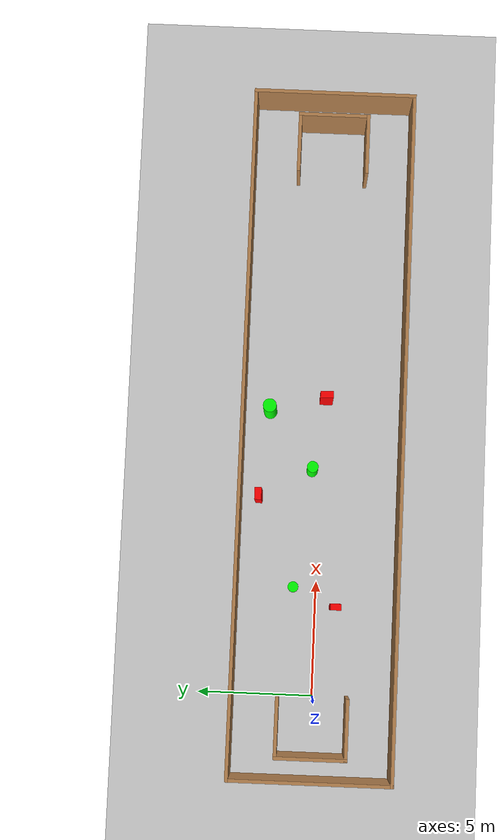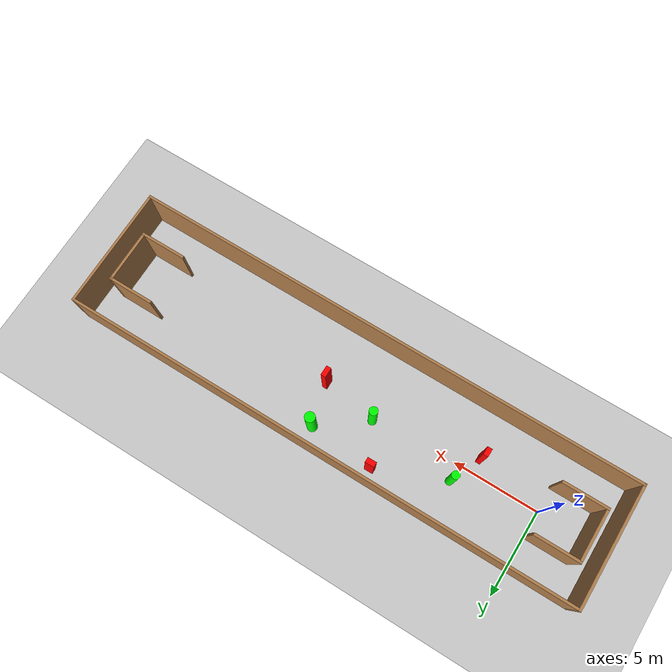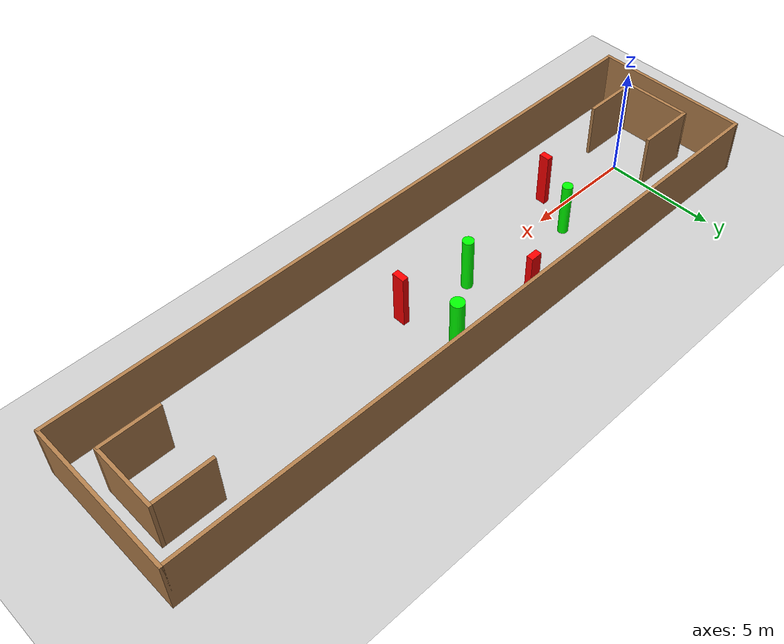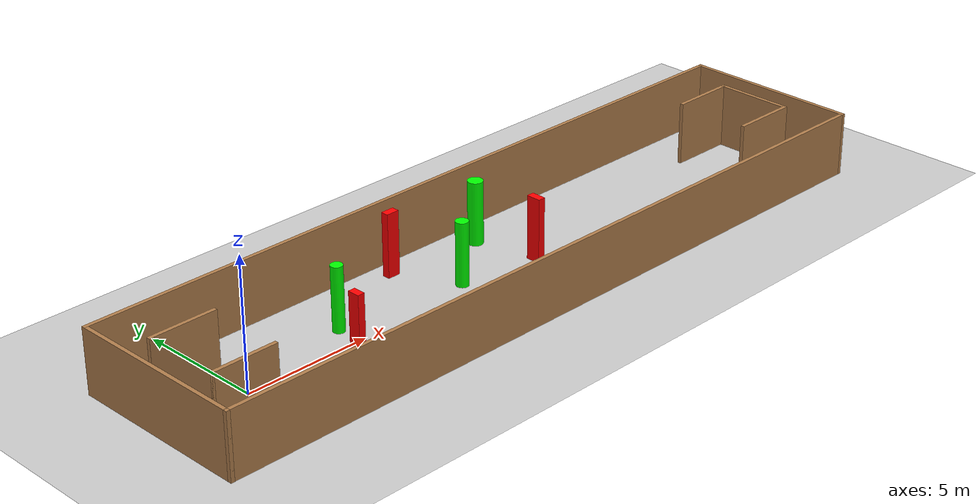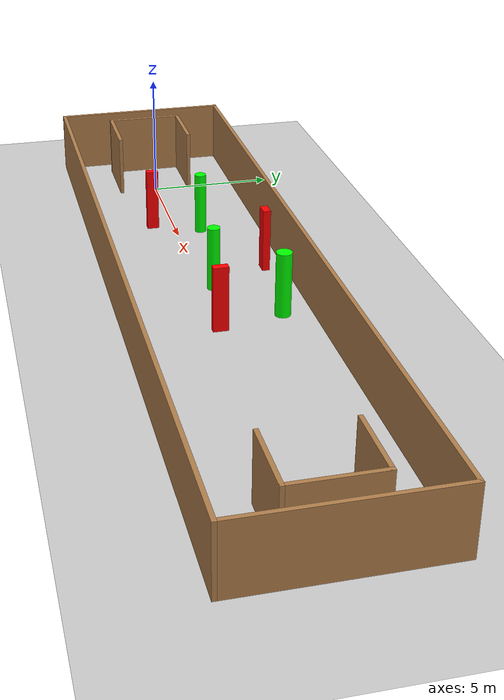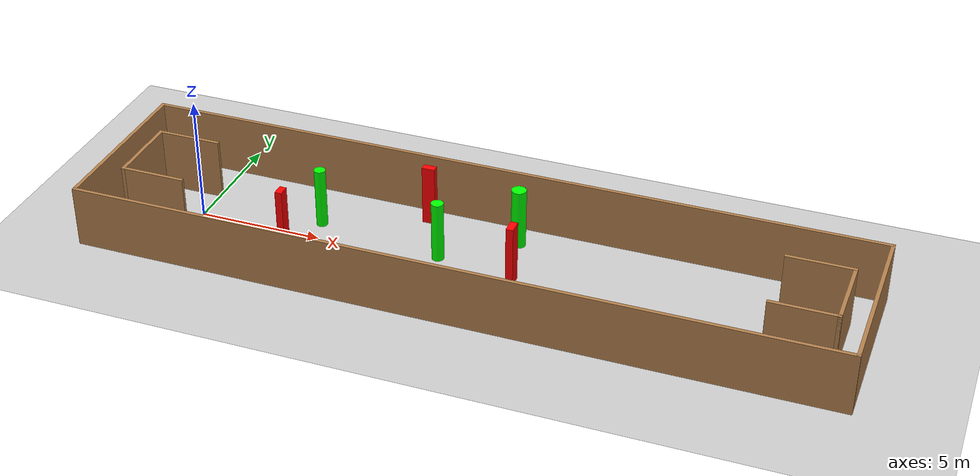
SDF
<sdf version="1.7">
 <world name="default">
  <light name="sun" type="directional">
   <pose>0 0 10 0 -0 0</pose>
   <diffuse>0.8 0.8 0.8 1</diffuse>
   <specular>0.2 0.2 0.2 1</specular>
   <attenuation>
    <range>1000</range>
    <constant>0.9</constant>
    <linear>0.01</linear>
    <quadratic>0.001</quadratic>
   </attenuation>
   <direction>-0.5 0.1 -0.9</direction>
   <spot><inner_angle>0</inner_angle><outer_angle>0</outer_angle><falloff>0</falloff></spot>
  </light>
  <model name="ground_plane">
   <static>1</static>
   <link name="link">
    <collision name="collision">
     <geometry><plane><normal>0 0 1</normal><size>100 100</size></plane></geometry>
     <surface>
      <contact><collide_bitmask>65535</collide_bitmask></contact>
      <friction><ode><mu>100</mu><mu2>50</mu2></ode></friction>
     </surface>
    </collision>
    <visual name="visual">
     <cast_shadows>0</cast_shadows>
     <geometry><plane><normal>0 0 1</normal><size>100 100</size></plane></geometry>
     <material>
      <script><uri>file://media/materials/scripts/gazebo.material</uri><name>Gazebo/Grey</name></script>
     </material>
    </visual>
   </link>
  </model>
  <gravity>0 0 -9.8</gravity>
  <magnetic_field>6e-06 2.3e-05 -4.2e-05</magnetic_field>
  <atmosphere type="adiabatic"/>
  <physics type="ode">
   <max_step_size>0.001</max_step_size>
   <real_time_factor>1</real_time_factor>
   <real_time_update_rate>1000</real_time_update_rate>
  </physics>
  <scene><ambient>0.4 0.4 0.4 1</ambient><background>0.7 0.7 0.7 1</background><shadows>1</shadows></scene>
  <spherical_coordinates>
   <surface_model>EARTH_WGS84</surface_model>
   <latitude_deg>0</latitude_deg>
   <longitude_deg>0</longitude_deg>
   <elevation>0</elevation>
   <heading_deg>0</heading_deg>
  </spherical_coordinates>
  <model name="my_base_walls">
   <link name="Wall_0">
    <collision name="Wall_0_Collision">
     <geometry><box><size>7.15 0.15 2.5</size></box></geometry>
     <pose>0 0 1.25 0 -0 0</pose>
    </collision>
    <visual name="Wall_0_Visual">
     <pose>0 0 1.25 0 -0 0</pose>
     <geometry><box><size>7.15 0.15 2.5</size></box></geometry>
     <material>
      <script><uri>file://media/materials/scripts/gazebo.material</uri><name>Gazebo/Wood</name></script>
      <ambient>1 1 1 1</ambient>
     </material>
     <meta><layer>0</layer></meta>
    </visual>
    <pose>-15 0 0 0 -0 1.5708</pose>
   </link>
   <link name="Wall_10">
    <collision name="Wall_10_Collision">
     <geometry><box><size>2.65 0.15 2.5</size></box></geometry>
     <pose>0 0 1.25 0 -0 0</pose>
    </collision>
    <visual name="Wall_10_Visual">
     <pose>0 0 1.25 0 -0 0</pose>
     <geometry><box><size>2.65 0.15 2.5</size></box></geometry>
     <material>
      <script><uri>file://media/materials/scripts/gazebo.material</uri><name>Gazebo/Wood</name></script>
      <ambient>1 1 1 1</ambient>
     </material>
     <meta><layer>0</layer></meta>
    </visual>
    <pose>-12.75 -1.5 0 0 -0 0</pose>
   </link>
   <link name="Wall_12">
    <collision name="Wall_12_Collision">
     <geometry><box><size>2.65 0.15 2.5</size></box></geometry>
     <pose>0 0 1.25 0 -0 0</pose>
    </collision>
    <visual name="Wall_12_Visual">
     <pose>0 0 1.25 0 -0 0</pose>
     <geometry><box><size>2.65 0.15 2.5</size></box></geometry>
     <material>
      <script><uri>file://media/materials/scripts/gazebo.material</uri><name>Gazebo/Wood</name></script>
      <ambient>1 1 1 1</ambient>
     </material>
     <meta><layer>0</layer></meta>
    </visual>
    <pose>-12.75 1.5 0 0 -0 0</pose>
   </link>
   <link name="Wall_14">
    <collision name="Wall_14_Collision">
     <geometry><box><size>3.15 0.15 2.5</size></box></geometry>
     <pose>0 0 1.25 0 -0 0</pose>
    </collision>
    <visual name="Wall_14_Visual">
     <pose>0 0 1.25 0 -0 0</pose>
     <geometry><box><size>3.15 0.15 2.5</size></box></geometry>
     <material>
      <script><uri>file://media/materials/scripts/gazebo.material</uri><name>Gazebo/Wood</name></script>
      <ambient>1 1 1 1</ambient>
     </material>
     <meta><layer>0</layer></meta>
    </visual>
    <pose>14 0 0 0 -0 -1.5708</pose>
   </link>
   <link name="Wall_15">
    <collision name="Wall_15_Collision">
     <geometry><box><size>2.65 0.15 2.5</size></box></geometry>
     <pose>0 0 1.25 0 -0 0</pose>
    </collision>
    <visual name="Wall_15_Visual">
     <pose>0 0 1.25 0 -0 0</pose>
     <geometry><box><size>2.65 0.15 2.5</size></box></geometry>
     <material>
      <script><uri>file://media/materials/scripts/gazebo.material</uri><name>Gazebo/Wood</name></script>
      <ambient>1 1 1 1</ambient>
     </material>
     <meta><layer>0</layer></meta>
    </visual>
    <pose>12.75 -1.5 0 0 -0 3.14159</pose>
   </link>
   <link name="Wall_17">
    <collision name="Wall_17_Collision">
     <geometry><box><size>2.65 0.15 2.5</size></box></geometry>
     <pose>0 0 1.25 0 -0 0</pose>
    </collision>
    <visual name="Wall_17_Visual">
     <pose>0 0 1.25 0 -0 0</pose>
     <geometry><box><size>2.65 0.15 2.5</size></box></geometry>
     <material>
      <script><uri>file://media/materials/scripts/gazebo.material</uri><name>Gazebo/Wood</name></script>
      <ambient>1 1 1 1</ambient>
     </material>
     <meta><layer>0</layer></meta>
    </visual>
    <pose>12.75 1.5 0 0 -0 3.14159</pose>
   </link>
   <link name="Wall_2">
    <collision name="Wall_2_Collision">
     <geometry><box><size>30.15 0.15 2.5</size></box></geometry>
     <pose>0 0 1.25 0 -0 0</pose>
    </collision>
    <visual name="Wall_2_Visual">
     <pose>0 0 1.25 0 -0 0</pose>
     <geometry><box><size>30.15 0.15 2.5</size></box></geometry>
     <material>
      <script><uri>file://media/materials/scripts/gazebo.material</uri><name>Gazebo/Wood</name></script>
      <ambient>1 1 1 1</ambient>
     </material>
     <meta><layer>0</layer></meta>
    </visual>
    <pose>-0 -3.5 0 0 -0 0</pose>
   </link>
   <link name="Wall_4">
    <collision name="Wall_4_Collision">
     <geometry><box><size>30.15 0.15 2.5</size></box></geometry>
     <pose>0 0 1.25 0 -0 0</pose>
    </collision>
    <visual name="Wall_4_Visual">
     <pose>0 0 1.25 0 -0 0</pose>
     <geometry><box><size>30.15 0.15 2.5</size></box></geometry>
     <material>
      <script><uri>file://media/materials/scripts/gazebo.material</uri><name>Gazebo/Wood</name></script>
      <ambient>1 1 1 1</ambient>
     </material>
     <meta><layer>0</layer></meta>
    </visual>
    <pose>-0 3.5 0 0 -0 0</pose>
   </link>
   <link name="Wall_6">
    <collision name="Wall_6_Collision">
     <geometry><box><size>7.15 0.15 2.5</size></box></geometry>
     <pose>0 0 1.25 0 -0 0</pose>
    </collision>
    <visual name="Wall_6_Visual">
     <pose>0 0 1.25 0 -0 0</pose>
     <geometry><box><size>7.15 0.15 2.5</size></box></geometry>
     <material>
      <script><uri>file://media/materials/scripts/gazebo.material</uri><name>Gazebo/Wood</name></script>
      <ambient>1 1 1 1</ambient>
     </material>
     <meta><layer>0</layer></meta>
    </visual>
    <pose>15 0 0 0 -0 -1.5708</pose>
   </link>
   <link name="Wall_9">
    <collision name="Wall_9_Collision">
     <geometry><box><size>3.15 0.15 2.5</size></box></geometry>
     <pose>0 0 1.25 0 -0 0</pose>
    </collision>
    <visual name="Wall_9_Visual">
     <pose>0 0 1.25 0 -0 0</pose>
     <geometry><box><size>3.15 0.15 2.5</size></box></geometry>
     <material>
      <script><uri>file://media/materials/scripts/gazebo.material</uri><name>Gazebo/Wood</name></script>
      <ambient>1 1 1 1</ambient>
     </material>
     <meta><layer>0</layer></meta>
    </visual>
    <pose>-14 0 0 0 -0 -1.5708</pose>
   </link>
   <static>1</static>
   <pose>11.5 0 0 0 -0 0</pose>
  </model>
  <model name="cylinder1">
   <static>1</static>
   <link name="link">
    <inertial>
     <mass>1</mass>
     <inertia><ixx>0.5</ixx><ixy>0</ixy><ixz>0</ixz><iyy>0.5</iyy><iyz>0</iyz><izz>1</izz></inertia>
    </inertial>
    <collision name="collision">
     <geometry><cylinder><radius>0.22706079759037257</radius><length>2.5</length></cylinder></geometry>
    </collision>
    <visual name="visual">
     <geometry><cylinder><radius>0.22706079759037257</radius><length>2.5</length></cylinder></geometry>
     <material>
      <ambient>0 1 0 1</ambient>
      <diffuse>0 1 0 1</diffuse>
      <specular>0.1 0.1 0.1 1</specular>
      <emissive>0 0 0 0</emissive>
     </material>
    </visual>
   </link>
   <pose>4.721931616092345 1.0052135557783632 1.25 0 0 0</pose>
  </model>
  <model name="cylinder2">
   <static>1</static>
   <link name="link">
    <inertial>
     <mass>1</mass>
     <inertia><ixx>0.5</ixx><ixy>0</ixy><ixz>0</ixz><iyy>0.5</iyy><iyz>0</iyz><izz>1</izz></inertia>
    </inertial>
    <collision name="collision">
     <geometry><cylinder><radius>0.2450213171099288</radius><length>2.5</length></cylinder></geometry>
    </collision>
    <visual name="visual">
     <geometry><cylinder><radius>0.2450213171099288</radius><length>2.5</length></cylinder></geometry>
     <material>
      <ambient>0 1 0 1</ambient>
      <diffuse>0 1 0 1</diffuse>
      <specular>0.1 0.1 0.1 1</specular>
      <emissive>0 0 0 0</emissive>
     </material>
    </visual>
   </link>
   <pose>9.888475305352982 0.3627832993716953 1.25 0 0 0</pose>
  </model>
  <model name="cylinder3">
   <static>1</static>
   <link name="link">
    <inertial>
     <mass>1</mass>
     <inertia><ixx>0.5</ixx><ixy>0</ixy><ixz>0</ixz><iyy>0.5</iyy><iyz>0</iyz><izz>1</izz></inertia>
    </inertial>
    <collision name="collision">
     <geometry><cylinder><radius>0.29454448938237754</radius><length>2.5</length></cylinder></geometry>
    </collision>
    <visual name="visual">
     <geometry><cylinder><radius>0.29454448938237754</radius><length>2.5</length></cylinder></geometry>
     <material>
      <ambient>0 1 0 1</ambient>
      <diffuse>0 1 0 1</diffuse>
      <specular>0.1 0.1 0.1 1</specular>
      <emissive>0 0 0 0</emissive>
     </material>
    </visual>
   </link>
   <pose>12.481193759276985 2.3226380592938307 1.25 0 0 0</pose>
  </model>
  <model name="box1">
   <static>1</static>
   <link name="link">
    <inertial>
     <mass>1</mass>
     <inertia><ixx>0.083</ixx><ixy>0</ixy><ixz>0</ixz><iyy>0.083</iyy><iyz>0</iyz><izz>0.083</izz></inertia>
    </inertial>
    <collision name="collision">
     <geometry><box><size>0.2799197281601124 0.46680549041385627 2.5</size></box></geometry>
    </collision>
    <visual name="visual">
     <geometry><box><size>0.2799197281601124 0.46680549041385627 2.5</size></box></geometry>
     <material>
      <ambient>1 0 0 1</ambient>
      <diffuse>1 0 0 1</diffuse>
      <specular>0.1 0.1 0.1 1</specular>
      <emissive>0 0 0 0</emissive>
     </material>
    </visual>
    <sensor name="my_contact" type="contact">
     <contact><collision>box_collision</collision><topic>__default_topic__</topic></contact>
    </sensor>
   </link>
   <pose>3.9324614084504628 -0.8534203916100287 1.25 0 0 0</pose>
  </model>
  <model name="box2">
   <static>1</static>
   <link name="link">
    <inertial>
     <mass>1</mass>
     <inertia><ixx>0.083</ixx><ixy>0</ixy><ixz>0</ixz><iyy>0.083</iyy><iyz>0</iyz><izz>0.083</izz></inertia>
    </inertial>
    <collision name="collision">
     <geometry><box><size>0.28718738853235737 0.5694795130314043 2.5</size></box></geometry>
    </collision>
    <visual name="visual">
     <geometry><box><size>0.28718738853235737 0.5694795130314043 2.5</size></box></geometry>
     <material>
      <ambient>1 0 0 1</ambient>
      <diffuse>1 0 0 1</diffuse>
      <specular>0.1 0.1 0.1 1</specular>
      <emissive>0 0 0 0</emissive>
     </material>
    </visual>
    <sensor name="my_contact" type="contact">
     <contact><collision>box_collision</collision><topic>__default_topic__</topic></contact>
    </sensor>
   </link>
   <pose>13.052958269461882 -0.13604376822728836 1.25 0 0 0</pose>
  </model>
  <model name="box3">
   <static>1</static>
   <link name="link">
    <inertial>
     <mass>1</mass>
     <inertia><ixx>0.083</ixx><ixy>0</ixy><ixz>0</ixz><iyy>0.083</iyy><iyz>0</iyz><izz>0.083</izz></inertia>
    </inertial>
    <collision name="collision">
     <geometry><box><size>0.5220531876613645 0.2931822613765886 2.5</size></box></geometry>
    </collision>
    <visual name="visual">
     <geometry><box><size>0.5220531876613645 0.2931822613765886 2.5</size></box></geometry>
     <material>
      <ambient>1 0 0 1</ambient>
      <diffuse>1 0 0 1</diffuse>
      <specular>0.1 0.1 0.1 1</specular>
      <emissive>0 0 0 0</emissive>
     </material>
    </visual>
    <sensor name="my_contact" type="contact">
     <contact><collision>box_collision</collision><topic>__default_topic__</topic></contact>
    </sensor>
   </link>
   <pose>8.65281370115771 2.6698114693332373 1.25 0 0 0</pose>
  </model>
 </world>
</sdf>
